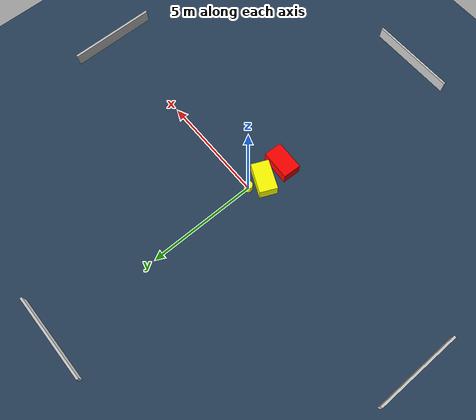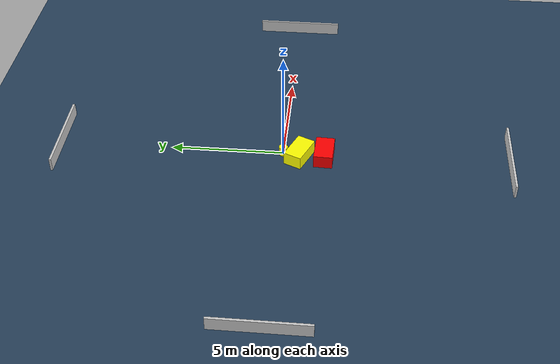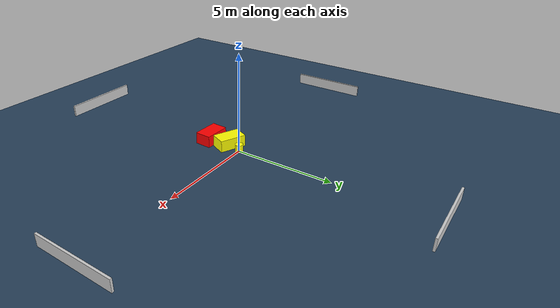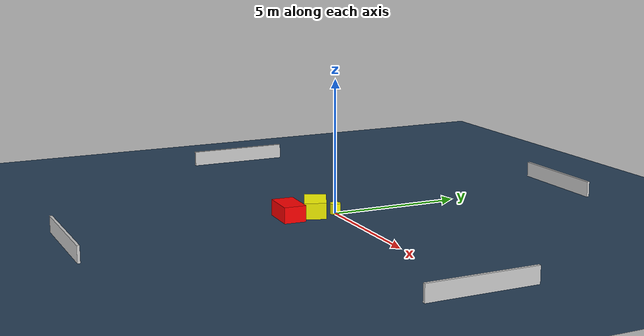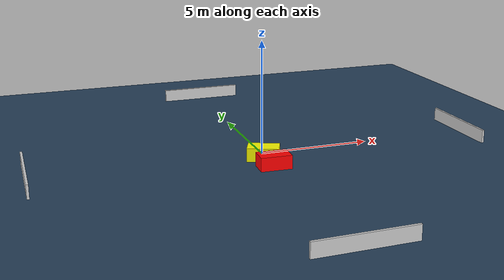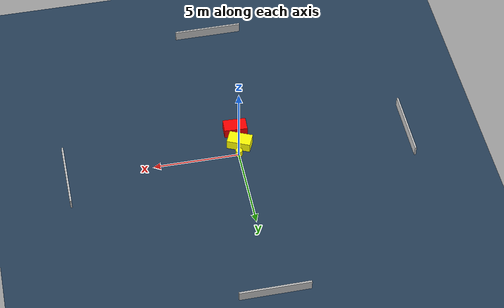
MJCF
<?xml version="1.0" ?>
<mujoco model="generated_environment">
  <option timestep="0.01" integrator="RK4" cone="elliptic"/>
  <default>
    <geom density="1"/>
  </default>
  <asset>
    <texture builtin="gradient" height="3072" name="skybox" rgb1="0.3 0.5 0.7" rgb2="0 0 0" type="skybox" width="512"/>
    <texture builtin="checker" height="300" name="groundplane" rgb1="0.2 0.3 0.4" rgb2="0.1 0.2 0.3" type="2d" width="300"/>
    <material name="groundplane" reflectance="0.2" texrepeat="5 5" texture="groundplane"/>
  </asset>
  <worldbody>
    <light dir="0 0 -1" directional="true" pos="0 0 1.5"/>
    <geom condim="3" friction="0.5 0.005 0.001" material="groundplane" name="floor" pos="0 0 0" size="0 0 0.05" type="plane"/>
    <body name="walls">
      <geom name="wall_1" condim="4" pos="-10.0 0.0 0.3" rgba="0.800000011920929 0.800000011920929 0.800000011920929 1.0" size="0.05 2.0 0.3" type="box"/>
      <geom name="wall_2" condim="4" pos="10.0 0.0 0.3" rgba="0.800000011920929 0.800000011920929 0.800000011920929 1.0" size="0.05 2.0 0.3" type="box"/>
      <geom name="wall_3" condim="4" pos="0.0 -10.0 0.3" rgba="0.800000011920929 0.800000011920929 0.800000011920929 1.0" size="2.0 0.05 0.3" type="box"/>
      <geom name="wall_4" condim="4" pos="0.0 10.0 0.3" rgba="0.800000011920929 0.800000011920929 0.800000011920929 1.0" size="2.0 0.05 0.3" type="box"/>
    </body>
    <body name="robot">
      <joint name="joint_x" type="slide" pos="0 0 0" axis="1 0 0"/>
      <joint name="joint_y" type="slide" pos="0 0 0" axis="0 1 0"/>
      <geom name="robot" type="cylinder" pos="0.0 0.0 0.2" size="0.2 0.2 0.0" mass="5.0" friction="1.0 0.005 0.0001" condim="4" rgba="1.0 1.0 0.0 1.0"/>
    </body>
    <body name="obstacle_1_movable">
      <geom name="obstacle_1_movable" condim="4" pos="-0.19385359448212253 -0.7257223362302442 0.3" euler="0 0 336.0691176498417" friction="0.0 0.005 0.001" rgba="1.0 1.0 0.0 1.0" size="0.6862146481791049 0.4082887250442069 0.3" type="box" mass="0.1"/>
      <joint type="free"/>
    </body>
    <body name="obstacle_2_static">
      <geom name="obstacle_2_static" condim="4" pos="-0.1243848850518977 -1.8178551716053843 0.3" euler="0 0 177.54359319701393" friction="0.0 0.005 0.001" rgba="1.0 0.0 0.0 1.0" size="0.6755010780506876 0.4144039237839455 0.3" type="box"/>
    </body>
  </worldbody>
  <actuator>
    <motor name="actuator_x" joint="joint_x" gear="1" ctrlrange="-1 1"/>
    <motor name="actuator_y" joint="joint_y" gear="1" ctrlrange="-1 1"/>
  </actuator>
</mujoco>
